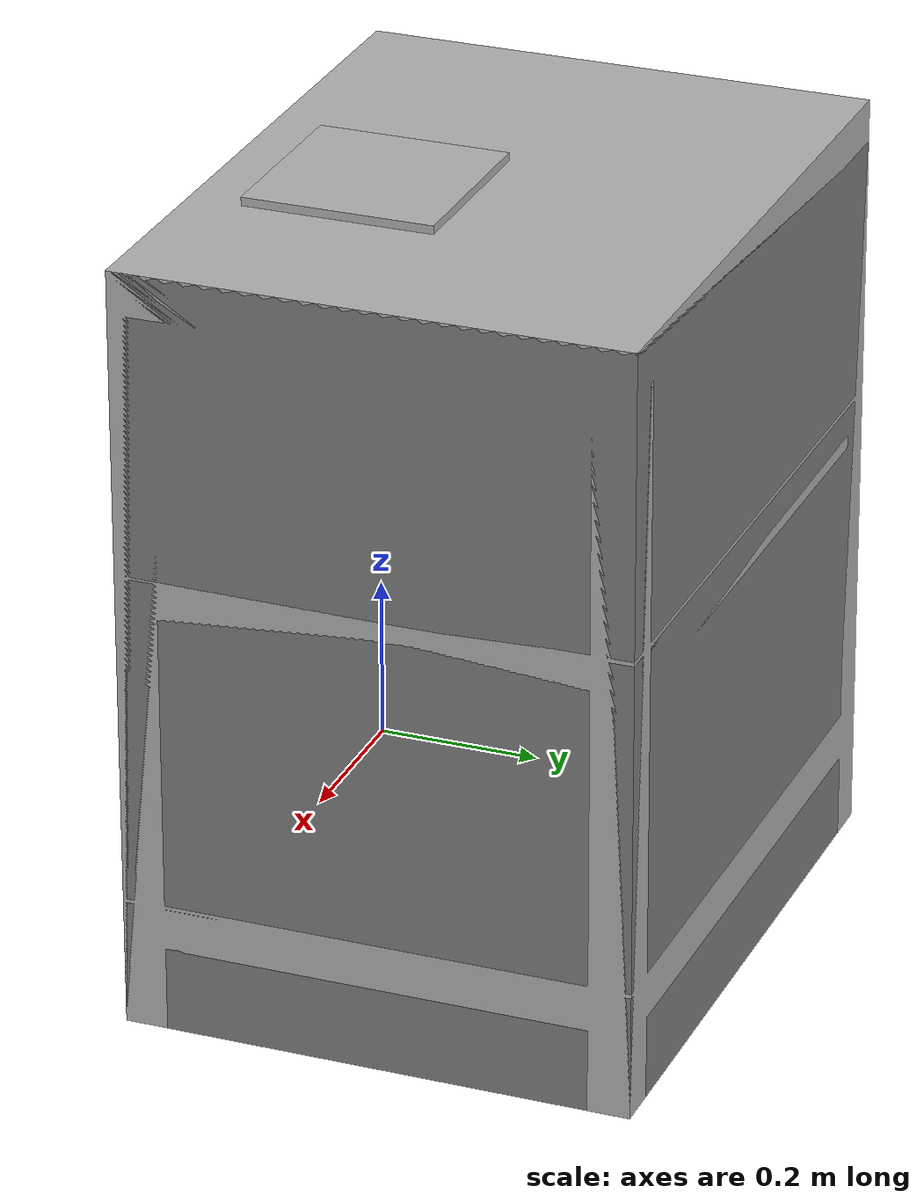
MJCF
<?xml version="1.0" ?>
<mujoco>
    <asset>
        <mesh name="e_lab_mount" file="meshes/e_lab_mount/e_lab_mount.stl" scale="0.001 0.001 0.001"/>
    </asset>

    <worldbody>
        <body name="base" pos="0 0 0">
            <body name="e_lab_mount" pos="0 0 0">
                <inertial diaginertia="6.0869 5.81635 4.20915" mass="60.864" pos="0 0 0" quat="0.659267 -0.259505 -0.260945 0.655692"/>
                <geom conaffinity="0" contype="0" group="2" mesh="e_lab_mount" type="mesh" name="e_lab_mount_vis" rgba="0.7 0.7 0.7 1" />
                <geom pos="0.38 0.3 0.455" size="0.38 0.3 0.455" type="box" name="collision"/>
                <geom conaffinity="0" contype="0" group="2" pos="0.43 0.175 0.915" size="0.1125 0.1125 0.005" type="box" name="pad" rgba="0.7 0.7 0.7 1"/>
            </body>
        </body>
    </worldbody>
</mujoco>
